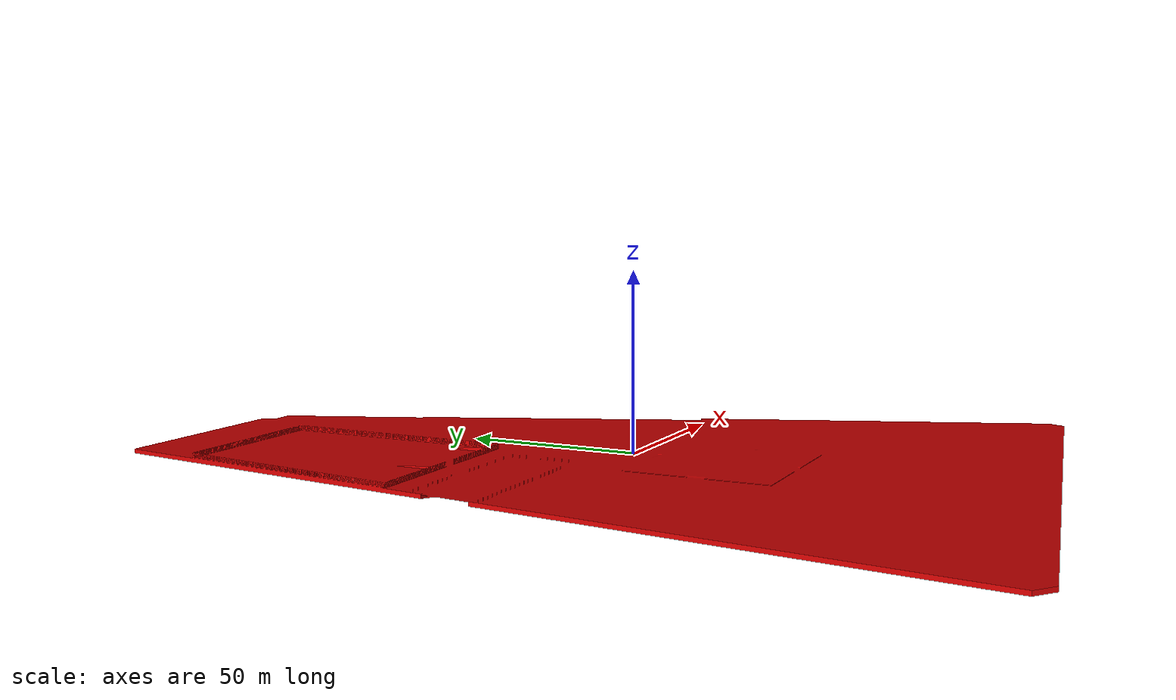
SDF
<?xml version='1.0'?>
<sdf version="1.6">
  <model name="Paseo de la Habana (Floor)">
    <pose>0 0 0 0 0 0</pose>
    <static>true</static>
    <link name="base_link">
      <inertial>
        <mass>1.0</mass>
        <inertia> <!-- inertias are tricky to compute -->
          <!-- http://gazebosim.org/tutorials?tut=inertia&cat=build_robot -->
          <ixx>0.083</ixx>       <!-- for a box: ixx = 0.083 * mass * (y*y + z*z) -->
          <ixy>0.0</ixy>         <!-- for a box: ixy = 0 -->
          <ixz>0.0</ixz>         <!-- for a box: ixz = 0 -->
          <iyy>0.083</iyy>       <!-- for a box: iyy = 0.083 * mass * (x*x + z*z) -->
          <iyz>0.0</iyz>         <!-- for a box: iyz = 0 -->
          <izz>0.083</izz>       <!-- for a box: izz = 0.083 * mass * (x*x + y*y) -->
        </inertia>
      </inertial>

      <visual name="base_visual">
          <geometry>
            <mesh>
              <scale>1.0 1.0 1.0</scale>
              <uri>source/model.obj</uri>
            </mesh>
          </geometry>
          <material>
            <ambient>0.8 0.0 0.0 1</ambient>
            <diffuse>0.8 0.0 0.0 1</diffuse>
            <specular>0.8 0.0 0.0 1</specular>
          </material>
      </visual>

      <collision name="base_collision">
        <geometry>
          <mesh>
              <scale>1.0 1.0 1.0</scale>
              <uri>source/model.obj</uri>
            </mesh>
        </geometry>
      </collision>
    </link>
  </model>
</sdf>
